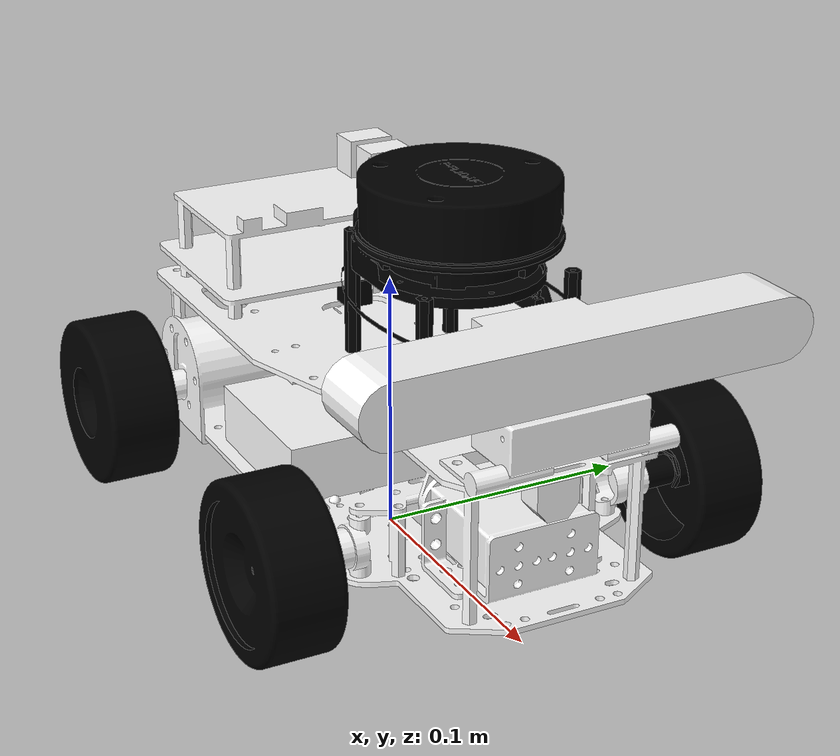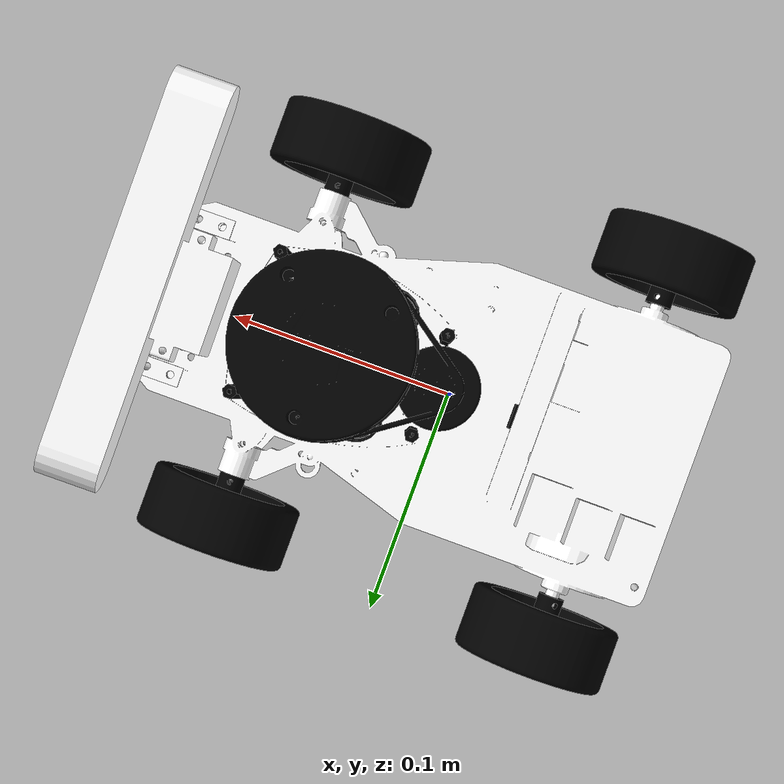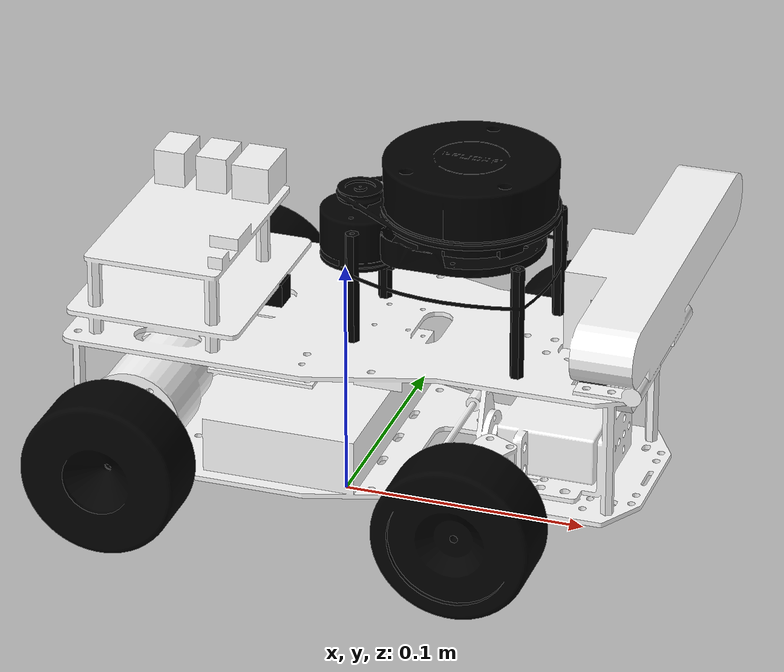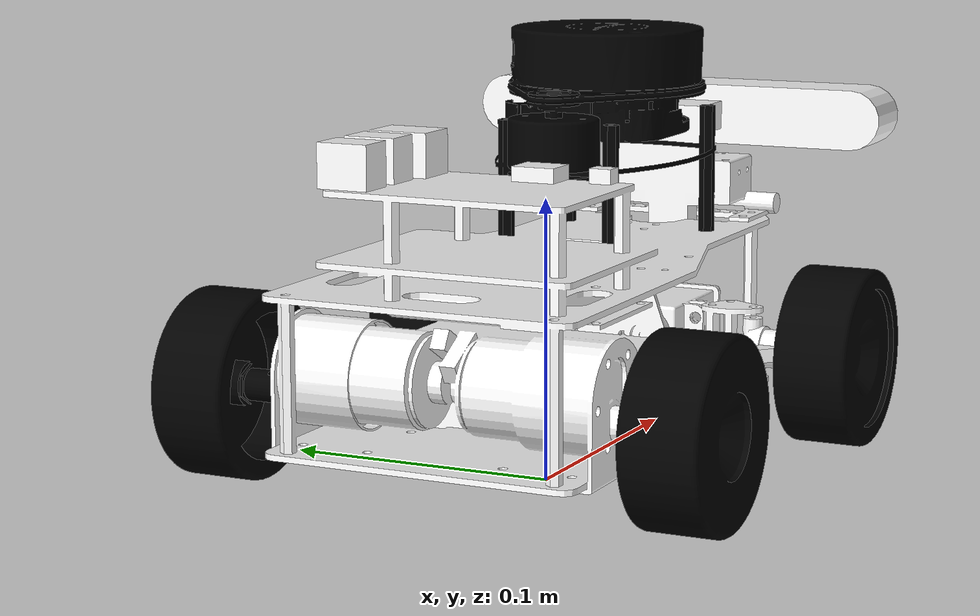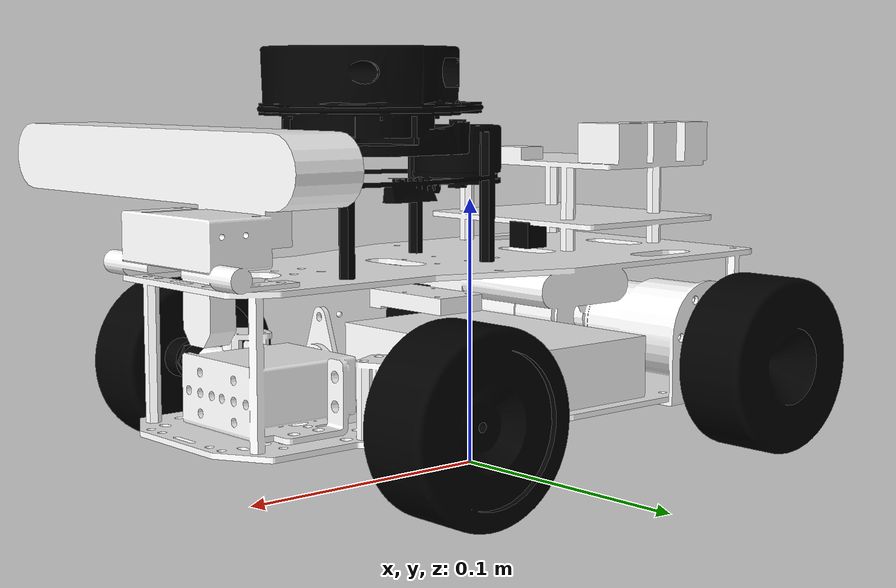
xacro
<?xml version="1.0"?>
<robot name="wheeltec" xmlns:xacro="http://www.ros.org/wiki/xacro">
    <!--M_PI-->
    <xacro:property name="M_PI" value="3.1415926535897931" />
    <!--rplidar description-->
    <!--rplidar position-->
    <xacro:property name="rplidar_position_x" value="0.051872" />
    <xacro:property name="rplidar_position_y" value="0.00011578" />
    <xacro:property name="rplidar_position_z" value="0.1306" />
    <!--rplidar scanning angle-->
    <xacro:property name="rplidar_min_angle" value="-180" />
    <xacro:property name="rplidar_max_angle" value="180" />
    <!--camera description-->
    <!--camera position-->
    <xacro:property name="camera_position_x" value="0.1402" />
    <xacro:property name="camera_position_y" value="0.00021887" />
    <xacro:property name="camera_position_z" value="0.093025" />
    <!--robot_body description-->
    <!--wheel position-->
    <xacro:property name="rear_wheel_position_x" value="-0.069152" />
    <xacro:property name="right_rear_wheel_position_y" value="-0.083" />
    <xacro:property name="left_rear_wheel_position_y" value="0.083" />
    <xacro:property name="rear_wheel_position_z" value="0.0165" />
    <xacro:property name="left_front_wheel_position_x" value="0.074098" />
    <xacro:property name="right_front_wheel_position_x" value="0.074098" />
    <xacro:property name="left_front_wheel_position_y" value="0.081003" />
    <xacro:property name="right_front_wheel_position_y" value="-0.080997" />
    <xacro:property name="front_wheel_position_z" value="0.013" />
    <xacro:property name="wheel_mass" value="0.0515533105453353"/>
    <!--chassis position-->
    <xacro:property name="box_position_x" value="0" />
    <xacro:property name="box_position_y" value="0" />
    <xacro:property name="box_position_z" value="0.025" />
    <!--chassis inertia-->
    <xacro:property name="box_length" value="0.23" />
    <xacro:property name="box_height" value="0.05" />
    <xacro:property name="box_width" value="0.12" />
    <xacro:property name="box_mass"   value="2.8" />
    <!--wheel angle limit-->
    <xacro:property name="wheel_travel" value="1.046562"/> <!--60 degree-->
    <!--robot with rplidar,camera and imu -->
    <xacro:include filename="$(find wheeltec_description)/urdf/mini_akm/miniakm_body.xacro" />
    <xacro:include filename="$(find wheeltec_description)/urdf/mini_akm/miniakm_rplidar.xacro" />
    <xacro:include filename="$(find wheeltec_description)/urdf/mini_akm/miniakm_camera.xacro" />
    <xacro:include filename="$(find wheeltec_description)/urdf/imu.xacro" />
    <xacro:include filename="$(find wheeltec_description)/urdf/material.xacro" />
    <xacro:include filename="$(find wheeltec_description)/urdf/mini_akm/miniakm_transmission.xacro" />
    <!-- define rplidar joint-->
    <joint name="rplidar_joint" type="fixed">
        <origin xyz="${rplidar_position_x} ${rplidar_position_y} ${rplidar_position_z}" rpy="0 0 0" />
        <parent link="base_link"/>
        <child link="laser_link"/>
    </joint>
    <!-- define camera joint-->
    <joint name="camera_frame_joint" type="fixed">
        <origin xyz="${camera_position_x} ${camera_position_y} ${camera_position_z}" rpy="0 0 0" />
        <parent link="base_link"/>
        <child link="camera_link"/>
    </joint>
    <!--define rear_wheel_joint rotate around the y axis,Max velocity is 38.70 rad/s,Max effort 3.9 N m  -->
    <xacro:macro name="rear_joint" params="LR *origin  ">
    <joint name="${LR}_rear_wheel_joint" type="continuous">
        <xacro:insert_block name="origin"/>
        <parent link="base_link"/>
        <child link="${LR}_rear_wheel_link"/>
        <axis xyz="0 1 0" rpy="0 0 0"/>
        <limit effort="3.9" velocity="38.70"/>
    </joint>
    </xacro:macro>
    <xacro:macro name="front_joint" params="LR *origin ">
    <!--define front axle carrier-->
    <link name="${LR}_front_axle_carrier">
        <inertial>
          <mass value="0.01"/>
          <inertia ixx="0.001" ixy="0" ixz="0" iyy="0.001" iyz="0" izz="0.001"/>
        </inertial>
    </link>
    <!--define front_wheel_joint rotate around the y axis,Max velocity is 38.70 rad/s,Max effort 3.9 N m-->
    <joint name="${LR}_front_wheel_joint" type="continuous">
        <origin xyz="0 0 0" rpy="0 0 0"/>
        <parent link="${LR}_front_axle_carrier"/>
        <child link="${LR}_front_wheel_link"/>
        <axis xyz="0 1 0" rpy="0 0 0"/>
        <limit effort="3.9" velocity="38.70" />
    </joint>
    <!--define steering_joint rotate around the z axis,Max velocity is 4.5 rad/s,Max effort 0.045 N m-->
    <joint name="${LR}_steering_joint" type="revolute">
      <xacro:insert_block name="origin"/>
      <parent link="base_link"/>
      <child link="${LR}_front_axle_carrier"/>
      <axis xyz="0 0 1"/>
      <!--upper 30 degree and lower -30 degree-->
      <limit lower="${-wheel_travel/2}" upper="${wheel_travel/2}"
             effort="0.045" velocity="4.5"/>
    </joint>
    </xacro:macro>
    <!--define imu_joint fixed -->
    <joint name="imu_joint" type="fixed">
      <origin xyz="-0.03 0 0.06" rpy="0 0 0" />
      <parent link="base_link"/>
      <child link="imu_link"/>
    </joint>
    <!--macro call rplidar imu astra_camera-->
    <rplidar LA="laser"/>
    <imu prefix="imu"/>
    <astra_camera prefix="camera"/>
    <!--macro call wheel_link-->
    <xacro:wheel_link LR="right" FR="rear">
        <origin xyz="-3.98258093170512E-11 -0.00279452473049574 1.19940203602287E-11" rpy="0 0 0" />
        <inertia
          ixx="1.99603833653634E-05"
          ixy="1.47023522649957E-14"
          ixz="1.56178238251791E-10"
          iyy="3.41116766443603E-05"
          iyz="-1.59750652595274E-15"
          izz="1.99606952584451E-05" />
    </xacro:wheel_link>
    <xacro:wheel_link LR="left" FR="rear">
        <origin xyz="3.98258093170512E-11 0.00279452473049574 1.19940203602287E-11" rpy="0 0 0" />
        <inertia
          ixx="1.99603833653634E-05"
          ixy="1.47023522649957E-14"
          ixz="-1.56178238251791E-10"
          iyy="3.41116766443603E-05"
          iyz="1.59750652595274E-15"
          izz="1.99606952584451E-05" />
    </xacro:wheel_link>
    <xacro:wheel_link LR="right" FR="front">
        <origin xyz="1.50883194827145E-11 -0.00228176069832715 1.40150807625972E-11" rpy="0 0 0" />
        <inertia
          ixx="1.91351003010526E-05"
          ixy="-4.51400783455223E-15"
          ixz="-2.66123995114195E-10"
          iyy="3.30131998434901E-05"
          iyz="-4.48462029754282E-15"
          izz="1.91374249680472E-05" />
    </xacro:wheel_link>
    <xacro:wheel_link LR="left" FR="front">
        <origin xyz="1.50882639715633E-11 0.00228176069832718 -1.40150807625972E-11" rpy="0 0 0"  />
        <inertia
          ixx="1.91343292762451E-05"
          ixy="4.51397364480803E-15"
          ixz="9.52734291190626E-10"
          iyy="3.30122388976539E-05"
          iyz="-4.48462116122782E-15"
          izz="1.91372350470185E-05" />
    </xacro:wheel_link>
    <!--macro call rear_joint-->
    <xacro:rear_joint LR="right" >
        <origin xyz="${rear_wheel_position_x} ${right_rear_wheel_position_y} ${rear_wheel_position_z}" rpy="0 0 0" />
    </xacro:rear_joint>
    <xacro:rear_joint LR="left" >
        <origin xyz="${rear_wheel_position_x} ${left_rear_wheel_position_y} ${rear_wheel_position_z}" rpy="0 0 0" />
    </xacro:rear_joint>
    <xacro:front_joint LR="right" >
        <origin xyz="${right_front_wheel_position_x} ${right_front_wheel_position_y} ${front_wheel_position_z}" rpy="0 0 0" />
    </xacro:front_joint>
    <xacro:front_joint LR="left" >
        <origin xyz="${left_front_wheel_position_x} ${left_front_wheel_position_y} ${front_wheel_position_z}" rpy="0 0 0" />
    </xacro:front_joint>
    <!--macro call transmission-->
    <wheel_transmission LR="right" FR="rear"/>
    <wheel_transmission LR="left" FR="rear"/>
    <wheel_transmission LR="right" FR="front"/>
    <wheel_transmission LR="left" FR="front"/>
    <steering_transmission LR="right" />
    <steering_transmission LR="left" />
</robot>

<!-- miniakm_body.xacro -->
<robot name="wheeltec" xmlns:xacro="http://www.ros.org/wiki/xacro">
    <!--unit :kg,m,rad-->
    <!-- Macro for box inertia matrix -->
    <xacro:macro name="box_inertial_matrix" params="m w h d">
        <inertial>
            <origin xyz="-0.016347 0.00073329 0.026157" rpy="0 0 0" />
            <mass value="${m}" />
            <inertia ixx="${m*(d*d+h*h)/12}" ixy = "0" ixz = "0"
                iyy="${m*(w*w+h*h)/12}" iyz = "0"
                izz="${m*(w*w+d*d)/12}" />
        </inertial>
    </xacro:macro>
    <!--define base_footprint-->
    <link name="base_footprint"/>
    <!--define fixed base_footprint_joint -->
    <joint name="base_footprint_joint" type="fixed">
      <origin xyz="${box_position_x} ${box_position_y} ${box_position_z}" rpy="0 0 0" />
      <parent link="base_footprint"/>
      <child link="base_link"/>
    </joint>
    <!--define base_link -->
    <link name="base_link">
      <!--inertia-->
      <box_inertial_matrix  m="${box_mass}" w="${box_length}" h="${box_height}" d="${box_width}"/>
      <!--visual-->
      <visual>
        <origin xyz="0 0 0" rpy="0 0 0" />
        <geometry>
          <!-- Add mesh for each wheel link -->
          <mesh filename="package://wheeltec_description/meshes/mini_akm/base_link.STL" />
        </geometry>
        <material name="white"/>
      </visual>
      <!--collision-->
      <collision>
        <origin xyz="0 0 0" rpy="0 0 0" />
        <geometry>
          <!-- Add mesh for each wheel link -->
          <mesh  filename="package://wheeltec_description/meshes/mini_akm/base_link.STL" />
        </geometry>
      </collision>
    </link>
    <!--macro define wheel_link-->
    <xacro:macro name="wheel_link" params="LR  FR *origin *inertia">
    <link name="${LR}_${FR}_wheel_link">
      <!--inertia-->
      <inertial>
        <!--Each wheel link has its own origin-->
        <xacro:insert_block name="origin"/>
        <!--Wheel mass is a common parameter-->
        <mass value="${wheel_mass}"/>
        <!--Each wheel link has its own inertia-->
        <xacro:insert_block name="inertia"/>
      </inertial>
      <!--visual-->
      <visual>
        <origin xyz="0 0 0" rpy="0 0 0" />
        <geometry>
          <!-- Add mesh for each wheel link -->
          <mesh filename="package://wheeltec_description/meshes/mini_akm/${LR}_${FR}_wheel_link.STL" />
        </geometry>
        <material name="black"/>
      </visual>
      <!--collision-->
      <collision>
        <origin xyz="0 0 0" rpy="0 0 0" />
        <geometry>
          <!-- Add mesh for each wheel link -->
          <mesh filename="package://wheeltec_description/meshes/mini_akm/${LR}_${FR}_wheel_link.STL" />
        </geometry>
      </collision>
    </link>
    </xacro:macro>
</robot>

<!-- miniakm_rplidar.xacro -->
<robot name="wheeltec" xmlns:xacro="http://www.ros.org/wiki/xacro">
    <xacro:macro name="rplidar" params="LA">
        <!-- define rplidar -->
        <link name="${LA}_link">
            <box_inertial_matrix  m="0.001" w="0.001" h="0.001" d="0.001"/>
            <visual>
                <origin xyz=" 0 0 0 " rpy="0 0 0" />
                <geometry>
                    <!--add rplidar mesh-->
                    <mesh filename="package://wheeltec_description/meshes/mini_akm/rplidar_link.STL" />
                </geometry>
                <material name="black"/>
            </visual>
            <collision>
                <origin xyz="0 0 0" rpy="0 0 0" />
                <geometry>
                    <!--add rplidar mesh-->
                    <mesh filename="package://wheeltec_description/meshes/mini_akm/rplidar_link.STL" />
                </geometry>
            </collision>
        </link>
        <gazebo reference="${LA}_link">
            <!--rplidar color in gazebo-->
            <material>Gazebo/Black</material>
            <!--define sensor-->
            <sensor type="ray" name="rplidar">
                <visualize>false</visualize>
                <update_rate>40</update_rate>
                <ray>
                    <scan>
                      <horizontal>
                        <samples>720</samples>
                        <resolution>1</resolution>
                        <min_angle>${rplidar_min_angle*M_PI/180}</min_angle>
                        <max_angle>${rplidar_max_angle*M_PI/180}</max_angle>
                      </horizontal>
                    </scan>
                    <range>
                      <min>0.10</min>
                      <max>10.0</max>
                      <resolution>0.01</resolution>
                    </range>
                    <!--Add gaussian noise-->
                    <noise>
                      <type>gaussian</type>
                      <mean>0.0</mean>
                      <stddev>0.0</stddev>
                    </noise>
                </ray>
                <plugin name="gazebo_rplidar" filename="libgazebo_ros_laser.so">
                    <topicName>/scan</topicName>
                    <frameName>laser_link</frameName>
                </plugin>
            </sensor>
        </gazebo>
    </xacro:macro>
</robot>

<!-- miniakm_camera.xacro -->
<robot name="wheeltec" xmlns:xacro="http://www.ros.org/wiki/xacro">
    <!-- macro define astra_camera-->
    <xacro:macro name="astra_camera" params="prefix">
    <!--Defining camera_link -->
    <link name="${prefix}_link">
        <box_inertial_matrix  m="0.001" w="0.001" h="0.001" d="0.001"/>
        <visual>
            <origin xyz="0 0 0" rpy="0 0 0 "/>
            <geometry>
                <!-- Add mesh for camera -->
                <mesh filename="package://wheeltec_description/meshes/mini_akm/camera_link.STL" />
            </geometry>
            <!--astra_camera color in rviz-->
            <material name="white"/>
        </visual>
        <collision>
            <origin xyz="0 0 0" rpy="0 0 0 "/>
            <geometry>
                <!-- Add mesh for camera -->
                <mesh filename="package://wheeltec_description/meshes/mini_akm/camera_link.STL" />
            </geometry>
        </collision>
    </link>
    <!--define camera_optical_joint-->
    <joint name="${prefix}_optical_joint" type="fixed">
        <origin xyz="0 0 0" rpy="${-M_PI/2} 0 ${-M_PI/2}"/>
        <parent link="${prefix}_link"/>
        <child link="${prefix}_frame_optical"/>
    </joint>
    <link name="${prefix}_frame_optical"/>
    <gazebo reference="${prefix}_link">
        <!--astra_camera color in gazebo-->
        <material>Gazebo/Grey</material>
        <!--define sensor-->
        <sensor type="depth" name="${prefix}">
            <always_on>true</always_on>
            <update_rate>20.0</update_rate>
            <camera>
                <horizontal_fov>${60.0*3.1415/180.0}</horizontal_fov>
                <image>
                    <format>R8G8B8</format>
                    <width>640</width>
                    <height>480</height>
                </image>
                <clip>
                    <near>0.05</near>
                    <far>8.0</far>
                </clip>
                <noise>
                <!--Add gaussian noise-->
                    <type>gaussian</type>
                    <mean>0.0</mean>
                    <stddev>0.007</stddev>
                </noise>
            </camera>
          <plugin name="astra_camera_controller" filename="libgazebo_ros_openni_kinect.so">
                    <cameraName>${prefix}</cameraName>
                    <alwaysOn>true</alwaysOn>
                    <updateRate>0</updateRate>
                    <imageTopicName>rgb/image_raw</imageTopicName>
                    <depthImageTopicName>depth/image_raw</depthImageTopicName>
                    <pointCloudTopicName>depth/points</pointCloudTopicName>
                    <cameraInfoTopicName>rgb/camera_info</cameraInfoTopicName>
                    <depthImageCameraInfoTopicName>depth/camera_info</depthImageCameraInfoTopicName>
                    <frameName>${prefix}_frame_optical</frameName>
                    <baseline>0.1</baseline>
                    <distortion_k1>0.0</distortion_k1>
                    <distortion_k2>0.0</distortion_k2>
                    <distortion_k3>0.0</distortion_k3>
                    <distortion_t1>0.0</distortion_t1>
                    <distortion_t2>0.0</distortion_t2>
                    <pointCloudCutoff>0.4</pointCloudCutoff>
                </plugin>
            </sensor>
        </gazebo>
    </xacro:macro>
</robot>

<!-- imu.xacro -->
<robot name="wheeltec" xmlns:xacro="http://www.ros.org/wiki/xacro" >
    <xacro:macro name="imu" params="prefix">
        <link name="${prefix}_link">
            <inertial>
                <mass value="0.001" />
                <origin xyz="0 0 0" />
                <inertia ixx="0.00001" ixy="0.0" ixz="0.0"
                         iyy="0.00001" iyz="0.0"
                         izz="0.00001" />
            </inertial>
            <visual>
                <origin xyz=" 0 0 0 " rpy="0 0 0" />
                <geometry>
                    <box size="0.01 0.01 0.01" />
                </geometry>
                <material name="black"/>
            </visual>
            <collision>
                <origin xyz="0.0 0.0 0.0" rpy="0 0 0" />
                <geometry>
                    <box size="0.02 0.02 0.01" />
                </geometry>
            </collision>
        </link>
        <gazebo reference="${prefix}_link">
            <material>Gazebo/Black</material>
        </gazebo>
        <gazebo reference="${prefix}_link">
            <gravity>true</gravity>
            <sensor name="imu_sensor" type="imu">
                <always_on>true</always_on>
                <update_rate>100</update_rate>
                <visualize>true</visualize>
                <topic>/imu</topic>
                <plugin filename="libgazebo_ros_imu_sensor.so" name="imu_plugin">
                    <topicName>/imu</topicName>
                    <bodyName>imu_link</bodyName>
                    <updateRateHZ>0.0</updateRateHZ>
                    <gaussianNoise>0.0</gaussianNoise>
                    <xyzOffset>0 0 0</xyzOffset>
                    <rpyOffset>0 0 0</rpyOffset>
                    <frameName>imu_link</frameName>
                </plugin>
            </sensor>
        </gazebo>

    </xacro:macro>
</robot>

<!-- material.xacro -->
<robot name="wheeltec" xmlns:xacro="http://www.ros.org/wiki/xacro">
<!-- Defining the colors used in this robot -->
<material name="black">
  <color rgba="0.0 0.0 0.0 1.0"/>
</material>

<material name="blue">
  <color rgba="0.0 0.0 0.8 1.0"/>
</material>

<material name="green">
  <color rgba="0.0 0.8 0.0 1.0"/>
</material>

<material name="grey">
  <color rgba="0.2 0.2 0.2 1.0"/>
</material>

<material name="white">
  <color rgba="1.0 1.0 1.0 1.0"/>
</material>

</robot>
